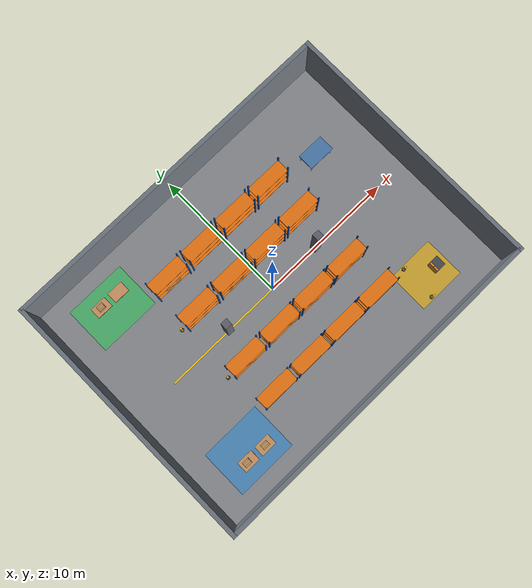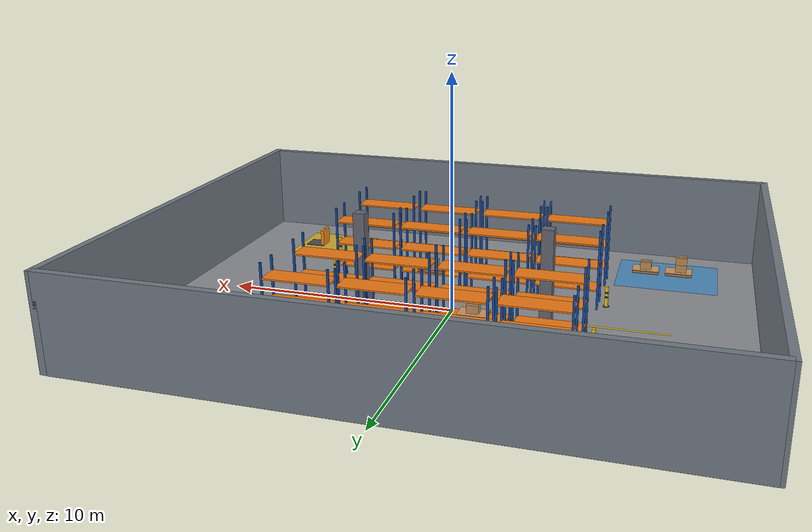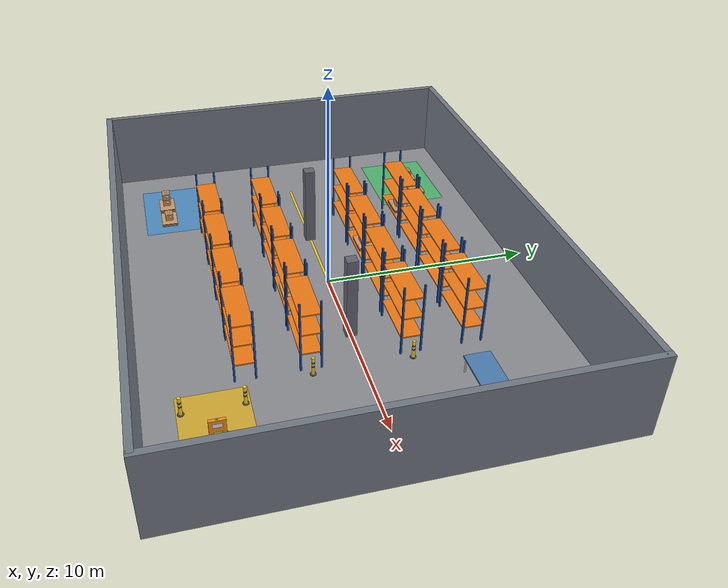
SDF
<?xml version="1.0" ?>
<sdf version="1.6">
  <world name="synapse_warehouse">
    <!-- Default Top-Down Camera View -->
    <gui fullscreen='0'>
      <camera name='user_camera'>
        <pose>0.0 0.0 22.0 0 1.570796 1.570796</pose>
        <view_controller>orbit</view_controller>
        <projection_type>perspective</projection_type>
      </camera>
    </gui>

    <plugin name="gazebo_ros_state" filename="libgazebo_ros_state.so">
      <ros>
        <namespace>/gazebo</namespace>
      </ros>
      <update_rate>50.0</update_rate>
    </plugin>
    <!-- Physics configuration optimized for ultra-smooth mobile robot simulation -->
    <physics type="ode">
      <max_step_size>0.004</max_step_size>
      <real_time_factor>1.0</real_time_factor>
      <real_time_update_rate>250</real_time_update_rate>
      <ode>
        <solver>
          <type>quick</type>
          <iters>20</iters>
          <sor>1.2</sor>
        </solver>
        <constraints>
          <cfm>0.0</cfm>
          <erp>0.2</erp>
          <contact_max_correcting_vel>100.0</contact_max_correcting_vel>
          <contact_surface_layer>0.001</contact_surface_layer>
        </constraints>
      </ode>
    </physics>

    <!-- Scene lighting: balanced realistic contrast, no washed-out white -->
    <scene>
      <ambient>0.42 0.42 0.42 1.0</ambient>
      <background>0.12 0.14 0.17 1.0</background>
      <shadows>false</shadows>
      <grid>false</grid>
    </scene>

    <!-- Ambient / Warehouse Sun -->
    <include>
      <uri>model://sun</uri>
    </include>

    <!-- Balanced High-Bay Warehouse Lighting -->
    <light type="point" name="highbay_light_1">
      <pose>-5.0 0.0 5.5 0 0 0</pose>
      <diffuse>0.55 0.55 0.55 1</diffuse>
      <specular>0.1 0.1 0.1 1</specular>
      <attenuation>
        <range>30</range>
        <constant>0.6</constant>
        <linear>0.02</linear>
        <quadratic>0.001</quadratic>
      </attenuation>
      <cast_shadows>false</cast_shadows>
    </light>

    <light type="point" name="highbay_light_2">
      <pose>5.0 0.0 5.5 0 0 0</pose>
      <diffuse>0.55 0.55 0.55 1</diffuse>
      <specular>0.1 0.1 0.1 1</specular>
      <attenuation>
        <range>30</range>
        <constant>0.6</constant>
        <linear>0.02</linear>
        <quadratic>0.001</quadratic>
      </attenuation>
      <cast_shadows>false</cast_shadows>
    </light>

    <!-- ================= WAREHOUSE BUILDING ================= -->
    <model name="warehouse_structure">
      <static>true</static>
      <link name="floor_and_walls">
        <!-- High-strength Industrial Concrete Floor -->
        <visual name="concrete_floor">
          <pose>0 0 -0.05 0 0 0</pose>
          <geometry><box><size>25.0 19.0 0.1</size></box></geometry>
          <material>
            <ambient>0.45 0.46 0.48 1.0</ambient>
            <diffuse>0.55 0.56 0.58 1.0</diffuse>
          </material>
        </visual>
        <collision name="col_floor">
          <pose>0 0 -0.05 0 0 0</pose>
          <geometry><box><size>25.0 19.0 0.1</size></box></geometry>
          <surface>
            <friction>
              <ode>
                <mu>1.0</mu>
                <mu2>1.0</mu2>
              </ode>
            </friction>
          </surface>
        </collision>

        <!-- Floor Markings: Safety Yellow Central Walkway / Transit Line -->
        <visual name="lane_marking_center">
          <pose>0 0 0.002 0 0 0</pose>
          <geometry><box><size>18.0 0.12 0.001</size></box></geometry>
          <material>
            <ambient>0.95 0.78 0.10 1.0</ambient>
            <diffuse>0.98 0.82 0.12 1.0</diffuse>
          </material>
        </visual>

        <!-- Floor Markings: Inbound Staging Border -->
        <visual name="inbound_zone_border">
          <pose>-8.5 -6.5 0.002 0 0 0</pose>
          <geometry><box><size>4.5 3.5 0.001</size></box></geometry>
          <material>
            <ambient>0.25 0.50 0.75 0.8</ambient>
            <diffuse>0.30 0.60 0.85 0.8</diffuse>
          </material>
        </visual>

        <!-- Floor Markings: Outbound Staging Border -->
        <visual name="outbound_zone_border">
          <pose>-8.5 6.5 0.002 0 0 0</pose>
          <geometry><box><size>4.5 3.5 0.001</size></box></geometry>
          <material>
            <ambient>0.25 0.70 0.40 0.8</ambient>
            <diffuse>0.30 0.80 0.45 0.8</diffuse>
          </material>
        </visual>

        <!-- Floor Markings: Charging Dock Border -->
        <visual name="dock_zone_border">
          <pose>8.0 -6.5 0.002 0 0 0</pose>
          <geometry><box><size>3.5 3.0 0.001</size></box></geometry>
          <material>
            <ambient>0.85 0.65 0.10 0.8</ambient>
            <diffuse>0.95 0.75 0.15 0.8</diffuse>
          </material>
        </visual>

        <!-- Perimeter Walls (North, South, East, West) -->
        <!-- North Wall -->
        <visual name="wall_north">
          <pose>0 9.5 2.0 0 0 0</pose>
          <geometry><box><size>25.0 0.3 4.0</size></box></geometry>
          <material>
            <ambient>0.35 0.38 0.42 1.0</ambient>
            <diffuse>0.45 0.48 0.52 1.0</diffuse>
          </material>
        </visual>
        <collision name="col_wall_north">
          <pose>0 9.5 2.0 0 0 0</pose>
          <geometry><box><size>25.0 0.3 4.0</size></box></geometry>
        </collision>

        <!-- South Wall -->
        <visual name="wall_south">
          <pose>0 -9.5 2.0 0 0 0</pose>
          <geometry><box><size>25.0 0.3 4.0</size></box></geometry>
          <material>
            <ambient>0.35 0.38 0.42 1.0</ambient>
            <diffuse>0.45 0.48 0.52 1.0</diffuse>
          </material>
        </visual>
        <collision name="col_wall_south">
          <pose>0 -9.5 2.0 0 0 0</pose>
          <geometry><box><size>25.0 0.3 4.0</size></box></geometry>
        </collision>

        <!-- East Wall -->
        <visual name="wall_east">
          <pose>12.5 0 2.0 0 0 0</pose>
          <geometry><box><size>0.3 19.3 4.0</size></box></geometry>
          <material>
            <ambient>0.35 0.38 0.42 1.0</ambient>
            <diffuse>0.45 0.48 0.52 1.0</diffuse>
          </material>
        </visual>
        <collision name="col_wall_east">
          <pose>12.5 0 2.0 0 0 0</pose>
          <geometry><box><size>0.3 19.3 4.0</size></box></geometry>
        </collision>

        <!-- West Wall -->
        <visual name="wall_west">
          <pose>-12.5 0 2.0 0 0 0</pose>
          <geometry><box><size>0.3 19.3 4.0</size></box></geometry>
          <material>
            <ambient>0.35 0.38 0.42 1.0</ambient>
            <diffuse>0.45 0.48 0.52 1.0</diffuse>
          </material>
        </visual>
        <collision name="col_wall_west">
          <pose>-12.5 0 2.0 0 0 0</pose>
          <geometry><box><size>0.3 19.3 4.0</size></box></geometry>
        </collision>

        <!-- Structural Building Columns -->
        <visual name="column_1">
          <pose>-4.0 0 2.0 0 0 0</pose>
          <geometry><box><size>0.5 0.5 4.0</size></box></geometry>
          <material><ambient>0.3 0.3 0.35 1.0</ambient><diffuse>0.4 0.4 0.45 1.0</diffuse></material>
        </visual>
        <collision name="col_column_1">
          <pose>-4.0 0 2.0 0 0 0</pose>
          <geometry><box><size>0.5 0.5 4.0</size></box></geometry>
        </collision>

        <visual name="column_2">
          <pose>4.0 0 2.0 0 0 0</pose>
          <geometry><box><size>0.5 0.5 4.0</size></box></geometry>
          <material><ambient>0.3 0.3 0.35 1.0</ambient><diffuse>0.4 0.4 0.45 1.0</diffuse></material>
        </visual>
        <collision name="col_column_2">
          <pose>4.0 0 2.0 0 0 0</pose>
          <geometry><box><size>0.5 0.5 4.0</size></box></geometry>
        </collision>
      </link>
    </model>

    <!-- ================= CHARGING DOCK ================= -->
    <include>
      <name>amr_charging_dock</name>
      <uri>model://charging_dock</uri>
      <!-- Placed against eastern zone, AMR approaches facing East or West -->
      <pose>9.0 -6.5 0 0 0 3.14159</pose>
    </include>

    <!-- ================= AISLE A: STORAGE RACKS (North Section) ================= -->
    <!-- Row A1 (Back row, y = 5.0) -->
    <include>
      <name>rack_a1_1</name>
      <uri>model://pallet_rack</uri>
      <pose>-4.5 5.0 0 0 0 0</pose>
    </include>
    <include>
      <name>rack_a1_2</name>
      <uri>model://pallet_rack</uri>
      <pose>-1.5 5.0 0 0 0 0</pose>
    </include>
    <include>
      <name>rack_a1_3</name>
      <uri>model://pallet_rack</uri>
      <pose>1.5 5.0 0 0 0 0</pose>
    </include>
    <include>
      <name>rack_a1_4</name>
      <uri>model://pallet_rack</uri>
      <pose>4.5 5.0 0 0 0 0</pose>
    </include>

    <!-- Row A2 (Front row, y = 2.2) -->
    <include>
      <name>rack_a2_1</name>
      <uri>model://pallet_rack</uri>
      <pose>-4.5 2.2 0 0 0 0</pose>
    </include>
    <include>
      <name>rack_a2_2</name>
      <uri>model://pallet_rack</uri>
      <pose>-1.5 2.2 0 0 0 0</pose>
    </include>
    <include>
      <name>rack_a2_3</name>
      <uri>model://pallet_rack</uri>
      <pose>1.5 2.2 0 0 0 0</pose>
    </include>
    <include>
      <name>rack_a2_4</name>
      <uri>model://pallet_rack</uri>
      <pose>4.5 2.2 0 0 0 0</pose>
    </include>

    <!-- ================= AISLE B: STORAGE RACKS (South Section) ================= -->
    <!-- Row B1 (Front row, y = -2.2) -->
    <include>
      <name>rack_b1_1</name>
      <uri>model://pallet_rack</uri>
      <pose>-4.5 -2.2 0 0 0 0</pose>
    </include>
    <include>
      <name>rack_b1_2</name>
      <uri>model://pallet_rack</uri>
      <pose>-1.5 -2.2 0 0 0 0</pose>
    </include>
    <include>
      <name>rack_b1_3</name>
      <uri>model://pallet_rack</uri>
      <pose>1.5 -2.2 0 0 0 0</pose>
    </include>
    <include>
      <name>rack_b1_4</name>
      <uri>model://pallet_rack</uri>
      <pose>4.5 -2.2 0 0 0 0</pose>
    </include>

    <!-- Row B2 (Back row, y = -5.0) -->
    <include>
      <name>rack_b2_1</name>
      <uri>model://pallet_rack</uri>
      <pose>-4.5 -5.0 0 0 0 0</pose>
    </include>
    <include>
      <name>rack_b2_2</name>
      <uri>model://pallet_rack</uri>
      <pose>-1.5 -5.0 0 0 0 0</pose>
    </include>
    <include>
      <name>rack_b2_3</name>
      <uri>model://pallet_rack</uri>
      <pose>1.5 -5.0 0 0 0 0</pose>
    </include>
    <include>
      <name>rack_b2_4</name>
      <uri>model://pallet_rack</uri>
      <pose>4.5 -5.0 0 0 0 0</pose>
    </include>

    <!-- ================= PRELOADED PALLETS & CARGO TEMPLATES ================= -->
    <!-- Inbound Staging Pallets & Boxes -->
    <include>
      <name>pallet_inbound_1</name>
      <uri>model://euro_pallet</uri>
      <pose>-9.0 -7.0 0 0 0 0</pose>
    </include>
    <include>
      <name>box_inbound_1a</name>
      <uri>model://cargo_box</uri>
      <pose>-9.1 -7.0 0.144 0 0 0</pose>
    </include>
    <include>
      <name>box_inbound_1b</name>
      <uri>model://cargo_box</uri>
      <pose>-9.1 -7.0 0.494 0 0 0</pose>
    </include>

    <include>
      <name>pallet_inbound_2</name>
      <uri>model://euro_pallet</uri>
      <pose>-7.5 -7.0 0 0 0 0</pose>
    </include>
    <include>
      <name>box_inbound_2a</name>
      <uri>model://cargo_box</uri>
      <pose>-7.5 -7.0 0.144 0 0 0</pose>
    </include>

    <!-- Outbound Staging Pallets & Boxes -->
    <include>
      <name>pallet_outbound_1</name>
      <uri>model://euro_pallet</uri>
      <pose>-9.0 7.0 0 0 0 0</pose>
    </include>
    <include>
      <name>box_outbound_1</name>
      <uri>model://cargo_box</uri>
      <pose>-9.0 7.0 0.144 0 0 0</pose>
    </include>

    <include>
      <name>pallet_outbound_2</name>
      <uri>model://euro_pallet</uri>
      <pose>-7.5 7.0 0 0 0 0</pose>
    </include>

    <!-- Pallets Loaded in Rack Bays (Aisle A & B) -->
    <include>
      <name>pallet_rack_a1_bay1</name>
      <uri>model://euro_pallet</uri>
      <pose>-4.5 5.0 0.88 0 0 0</pose>
    </include>
    <include>
      <name>box_rack_a1_bay1</name>
      <uri>model://cargo_box</uri>
      <pose>-4.5 5.0 1.024 0 0 0</pose>
    </include>

    <include>
      <name>pallet_rack_a2_bay2</name>
      <uri>model://euro_pallet</uri>
      <pose>-1.5 2.2 0.88 0 0 0</pose>
    </include>
    <include>
      <name>box_rack_a2_bay2</name>
      <uri>model://cargo_box</uri>
      <pose>-1.5 2.2 1.024 0 0 0</pose>
    </include>

    <include>
      <name>pallet_rack_b1_bay3</name>
      <uri>model://euro_pallet</uri>
      <pose>1.5 -2.2 0.88 0 0 0</pose>
    </include>
    <include>
      <name>box_rack_b1_bay3</name>
      <uri>model://cargo_box</uri>
      <pose>1.5 -2.2 1.024 0 0 0</pose>
    </include>

    <!-- Inspection Workstation Table (East Zone) -->
    <model name="inspection_table">
      <static>true</static>
      <link name="table_link">
        <visual name="table_top">
          <pose>8.5 4.5 0.80 0 0 0</pose>
          <geometry><box><size>2.0 1.2 0.08</size></box></geometry>
          <material><ambient>0.2 0.4 0.6 1</ambient><diffuse>0.3 0.5 0.7 1</diffuse></material>
        </visual>
        <collision name="col_table_top">
          <pose>8.5 4.5 0.80 0 0 0</pose>
          <geometry><box><size>2.0 1.2 0.08</size></box></geometry>
        </collision>
        <visual name="table_leg1"><pose>7.6 4.0 0.38 0 0 0</pose><geometry><cylinder><radius>0.04</radius><length>0.76</length></cylinder></geometry></visual>
        <visual name="table_leg2"><pose>9.4 4.0 0.38 0 0 0</pose><geometry><cylinder><radius>0.04</radius><length>0.76</length></cylinder></geometry></visual>
        <visual name="table_leg3"><pose>7.6 5.0 0.38 0 0 0</pose><geometry><cylinder><radius>0.04</radius><length>0.76</length></cylinder></geometry></visual>
        <visual name="table_leg4"><pose>9.4 5.0 0.38 0 0 0</pose><geometry><cylinder><radius>0.04</radius><length>0.76</length></cylinder></geometry></visual>
      </link>
    </model>

    <!-- ================= SAFETY BOLLARDS ================= -->
    <!-- Protecting Rack Row Entrances -->
    <include><name>bollard_a_west</name><uri>model://safety_bollard</uri><pose>-6.2 2.2 0 0 0 0</pose></include>
    <include><name>bollard_a_east</name><uri>model://safety_bollard</uri><pose>6.2 2.2 0 0 0 0</pose></include>
    <include><name>bollard_b_west</name><uri>model://safety_bollard</uri><pose>-6.2 -2.2 0 0 0 0</pose></include>
    <include><name>bollard_b_east</name><uri>model://safety_bollard</uri><pose>6.2 -2.2 0 0 0 0</pose></include>
    <!-- Protecting Charging Station -->
    <include><name>bollard_dock_n</name><uri>model://safety_bollard</uri><pose>7.2 -5.2 0 0 0 0</pose></include>
    <include><name>bollard_dock_s</name><uri>model://safety_bollard</uri><pose>7.2 -7.8 0 0 0 0</pose></include>

  </world>
</sdf>

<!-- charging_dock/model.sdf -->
<sdf version="1.6">
  <model name="charging_dock">
    <static>true</static>
    <link name="dock_body">
      <!-- Ground plate base -->
      <visual name="dock_plate">
        <pose>0 0 0.015 0 0 0</pose>
        <geometry><box><size>0.90 0.80 0.03</size></box></geometry>
        <material>
          <ambient>0.20 0.20 0.22 1.0</ambient>
          <diffuse>0.30 0.30 0.32 1.0</diffuse>
        </material>
      </visual>
      <collision name="col_dock_plate">
        <pose>0 0 0.015 0 0 0</pose>
        <geometry><box><size>0.90 0.80 0.03</size></box></geometry>
      </collision>

      <!-- Upright back tower -->
      <visual name="dock_tower">
        <pose>0.40 0 0.40 0 0 0</pose>
        <geometry><box><size>0.15 0.70 0.80</size></box></geometry>
        <material>
          <ambient>0.85 0.45 0.05 1.0</ambient>
          <diffuse>0.95 0.55 0.10 1.0</diffuse>
        </material>
      </visual>
      <collision name="col_dock_tower">
        <pose>0.40 0 0.40 0 0 0</pose>
        <geometry><box><size>0.15 0.70 0.80</size></box></geometry>
      </collision>

      <!-- Charging Contacts / Pad -->
      <visual name="charging_contacts">
        <pose>0.32 0 0.18 0 0 0</pose>
        <geometry><box><size>0.02 0.35 0.12</size></box></geometry>
        <material>
          <ambient>0.80 0.75 0.20 1.0</ambient>
          <diffuse>0.95 0.85 0.25 1.0</diffuse>
        </material>
      </visual>

      <!-- Docking visual target (High contrast chevron for vision sensor) -->
      <visual name="dock_target">
        <pose>0.32 0 0.55 0 0 0</pose>
        <geometry><box><size>0.01 0.40 0.20</size></box></geometry>
        <material>
          <ambient>0.1 0.1 0.1 1.0</ambient>
          <diffuse>0.9 0.9 0.9 1.0</diffuse>
        </material>
      </visual>

      <!-- Status Indicator Light (Green = Available) -->
      <visual name="status_beacon">
        <pose>0.40 0 0.83 0 0 0</pose>
        <geometry><cylinder><radius>0.035</radius><length>0.06</length></cylinder></geometry>
        <material>
          <ambient>0.10 0.85 0.25 1.0</ambient>
          <diffuse>0.15 0.95 0.30 1.0</diffuse>
          <emissive>0.10 0.80 0.20 1.0</emissive>
        </material>
      </visual>
    </link>
  </model>
</sdf>

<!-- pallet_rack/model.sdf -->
<sdf version="1.6">
  <model name="pallet_rack">
    <static>true</static>
    <link name="rack_structure">
      <!-- Upright Column: Left Front -->
      <visual name="upright_lf">
        <pose>-1.35 -0.45 1.75 0 0 0</pose>
        <geometry><box><size>0.08 0.08 3.5</size></box></geometry>
        <material>
          <ambient>0.05 0.20 0.50 1.0</ambient>
          <diffuse>0.08 0.30 0.65 1.0</diffuse>
          <specular>0.2 0.2 0.2 1.0</specular>
        </material>
      </visual>

      <!-- Upright Column: Left Rear -->
      <visual name="upright_lr">
        <pose>-1.35 0.45 1.75 0 0 0</pose>
        <geometry><box><size>0.08 0.08 3.5</size></box></geometry>
        <material>
          <ambient>0.05 0.20 0.50 1.0</ambient>
          <diffuse>0.08 0.30 0.65 1.0</diffuse>
          <specular>0.2 0.2 0.2 1.0</specular>
        </material>
      </visual>

      <!-- Upright Column: Right Front -->
      <visual name="upright_rf">
        <pose>1.35 -0.45 1.75 0 0 0</pose>
        <geometry><box><size>0.08 0.08 3.5</size></box></geometry>
        <material>
          <ambient>0.05 0.20 0.50 1.0</ambient>
          <diffuse>0.08 0.30 0.65 1.0</diffuse>
          <specular>0.2 0.2 0.2 1.0</specular>
        </material>
      </visual>

      <!-- Upright Column: Right Rear -->
      <visual name="upright_rr">
        <pose>1.35 0.45 1.75 0 0 0</pose>
        <geometry><box><size>0.08 0.08 3.5</size></box></geometry>
        <material>
          <ambient>0.05 0.20 0.50 1.0</ambient>
          <diffuse>0.08 0.30 0.65 1.0</diffuse>
          <specular>0.2 0.2 0.2 1.0</specular>
        </material>
      </visual>

      <!-- Shelf Tier 1: Lower Deck (Orange Cross Beams & Deck) -->
      <visual name="shelf_deck_1">
        <pose>0 0 0.85 0 0 0</pose>
        <geometry><box><size>2.70 0.95 0.06</size></box></geometry>
        <material>
          <ambient>0.85 0.40 0.05 1.0</ambient>
          <diffuse>0.95 0.48 0.08 1.0</diffuse>
          <specular>0.1 0.1 0.1 1.0</specular>
        </material>
      </visual>

      <!-- Shelf Tier 2: Middle Deck -->
      <visual name="shelf_deck_2">
        <pose>0 0 1.85 0 0 0</pose>
        <geometry><box><size>2.70 0.95 0.06</size></box></geometry>
        <material>
          <ambient>0.85 0.40 0.05 1.0</ambient>
          <diffuse>0.95 0.48 0.08 1.0</diffuse>
          <specular>0.1 0.1 0.1 1.0</specular>
        </material>
      </visual>

      <!-- Shelf Tier 3: Top Deck -->
      <visual name="shelf_deck_3">
        <pose>0 0 2.85 0 0 0</pose>
        <geometry><box><size>2.70 0.95 0.06</size></box></geometry>
        <material>
          <ambient>0.85 0.40 0.05 1.0</ambient>
          <diffuse>0.95 0.48 0.08 1.0</diffuse>
          <specular>0.1 0.1 0.1 1.0</specular>
        </material>
      </visual>

      <!-- Individual collisions for legs to allow AMR to drive underneath -->
      <collision name="col_upright_lf">
        <pose>-1.35 -0.45 1.75 0 0 0</pose>
        <geometry><box><size>0.08 0.08 3.5</size></box></geometry>
      </collision>
      <collision name="col_upright_lr">
        <pose>-1.35 0.45 1.75 0 0 0</pose>
        <geometry><box><size>0.08 0.08 3.5</size></box></geometry>
      </collision>
      <collision name="col_upright_rf">
        <pose>1.35 -0.45 1.75 0 0 0</pose>
        <geometry><box><size>0.08 0.08 3.5</size></box></geometry>
      </collision>
      <collision name="col_upright_rr">
        <pose>1.35 0.45 1.75 0 0 0</pose>
        <geometry><box><size>0.08 0.08 3.5</size></box></geometry>
      </collision>
    </link>
  </model>
</sdf>

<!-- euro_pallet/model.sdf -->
<sdf version="1.6">
  <model name="euro_pallet">
    <static>true</static>
    <link name="pallet_base">
      <!-- Top deck planks -->
      <visual name="top_deck">
        <pose>0 0 0.13 0 0 0</pose>
        <geometry><box><size>1.20 0.80 0.025</size></box></geometry>
        <material>
          <ambient>0.72 0.53 0.35 1.0</ambient>
          <diffuse>0.82 0.60 0.40 1.0</diffuse>
        </material>
      </visual>

      <!-- Center & Side Stringer Blocks (9 blocks) -->
      <visual name="blocks">
        <pose>0 0 0.065 0 0 0</pose>
        <geometry><box><size>1.18 0.78 0.09</size></box></geometry>
        <material>
          <ambient>0.60 0.43 0.28 1.0</ambient>
          <diffuse>0.70 0.50 0.32 1.0</diffuse>
        </material>
      </visual>

      <!-- Bottom deck planks -->
      <visual name="bottom_deck">
        <pose>0 0 0.01 0 0 0</pose>
        <geometry><box><size>1.20 0.80 0.02</size></box></geometry>
        <material>
          <ambient>0.65 0.48 0.30 1.0</ambient>
          <diffuse>0.75 0.55 0.35 1.0</diffuse>
        </material>
      </visual>

      <collision name="col_pallet">
        <pose>0 0 0.072 0 0 0</pose>
        <geometry><box><size>1.20 0.80 0.144</size></box></geometry>
        <surface>
          <friction>
            <ode>
              <mu>0.9</mu>
              <mu2>0.9</mu2>
            </ode>
          </friction>
        </surface>
      </collision>

      <inertial>
        <mass>22.0</mass>
        <pose>0 0 0.072 0 0 0</pose>
        <inertia>
          <ixx>1.20</ixx><ixy>0.0</ixy><ixz>0.0</ixz>
          <iyy>2.65</iyy><iyz>0.0</iyz>
          <izz>3.80</izz>
        </inertia>
      </inertial>
    </link>
  </model>
</sdf>

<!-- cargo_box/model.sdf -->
<sdf version="1.6">
  <model name="cargo_box">
    <link name="box_body">
      <visual name="cardboard">
        <pose>0 0 0.175 0 0 0</pose>
        <geometry><box><size>0.50 0.40 0.35</size></box></geometry>
        <material>
          <ambient>0.62 0.46 0.28 1.0</ambient>
          <diffuse>0.74 0.55 0.34 1.0</diffuse>
        </material>
      </visual>

      <!-- Tape strip visual on top -->
      <visual name="tape_strip">
        <pose>0 0 0.351 0 0 0</pose>
        <geometry><box><size>0.50 0.06 0.002</size></box></geometry>
        <material>
          <ambient>0.85 0.75 0.50 1.0</ambient>
          <diffuse>0.92 0.82 0.55 1.0</diffuse>
        </material>
      </visual>

      <!-- Shipping label visual -->
      <visual name="shipping_label">
        <pose>0.251 0.05 0.22 0 0 0</pose>
        <geometry><box><size>0.002 0.14 0.10</size></box></geometry>
        <material>
          <ambient>0.95 0.95 0.95 1.0</ambient>
          <diffuse>1.0 1.0 1.0 1.0</diffuse>
        </material>
      </visual>

      <collision name="col_box">
        <pose>0 0 0.175 0 0 0</pose>
        <geometry><box><size>0.50 0.40 0.35</size></box></geometry>
        <surface>
          <friction>
            <ode>
              <mu>0.8</mu>
              <mu2>0.8</mu2>
            </ode>
          </friction>
        </surface>
      </collision>

      <inertial>
        <mass>8.0</mass>
        <pose>0 0 0.175 0 0 0</pose>
        <inertia>
          <ixx>0.188</ixx><ixy>0.0</ixy><ixz>0.0</ixz>
          <iyy>0.248</iyy><iyz>0.0</iyz>
          <izz>0.273</izz>
        </inertia>
      </inertial>
    </link>
  </model>
</sdf>

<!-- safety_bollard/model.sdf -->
<sdf version="1.6">
  <model name="safety_bollard">
    <static>true</static>
    <link name="bollard_link">
      <!-- Base flange -->
      <visual name="flange">
        <pose>0 0 0.01 0 0 0</pose>
        <geometry><cylinder><radius>0.14</radius><length>0.02</length></cylinder></geometry>
        <material>
          <ambient>0.2 0.2 0.2 1.0</ambient>
          <diffuse>0.3 0.3 0.3 1.0</diffuse>
        </material>
      </visual>

      <!-- Main yellow post -->
      <visual name="post">
        <pose>0 0 0.45 0 0 0</pose>
        <geometry><cylinder><radius>0.075</radius><length>0.90</length></cylinder></geometry>
        <material>
          <ambient>0.95 0.75 0.05 1.0</ambient>
          <diffuse>0.98 0.80 0.10 1.0</diffuse>
        </material>
      </visual>

      <!-- Black warning stripe 1 -->
      <visual name="stripe1">
        <pose>0 0 0.65 0 0 0</pose>
        <geometry><cylinder><radius>0.076</radius><length>0.08</length></cylinder></geometry>
        <material>
          <ambient>0.1 0.1 0.1 1.0</ambient>
          <diffuse>0.15 0.15 0.15 1.0</diffuse>
        </material>
      </visual>

      <!-- Black warning stripe 2 -->
      <visual name="stripe2">
        <pose>0 0 0.45 0 0 0</pose>
        <geometry><cylinder><radius>0.076</radius><length>0.08</length></cylinder></geometry>
        <material>
          <ambient>0.1 0.1 0.1 1.0</ambient>
          <diffuse>0.15 0.15 0.15 1.0</diffuse>
        </material>
      </visual>

      <collision name="col_bollard">
        <pose>0 0 0.45 0 0 0</pose>
        <geometry><cylinder><radius>0.08</radius><length>0.90</length></cylinder></geometry>
      </collision>
    </link>
  </model>
</sdf>
